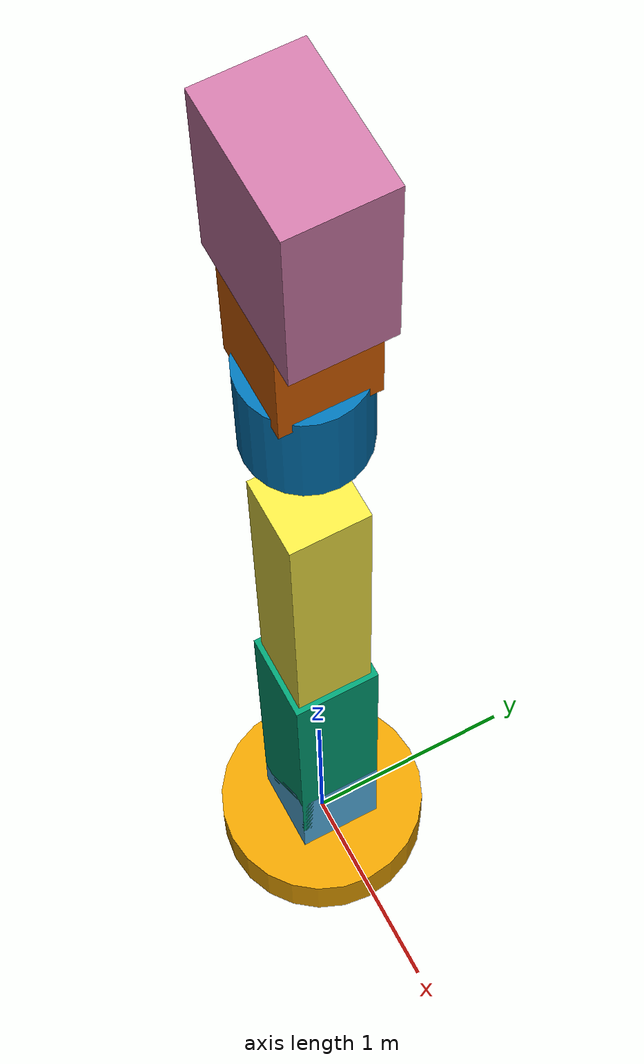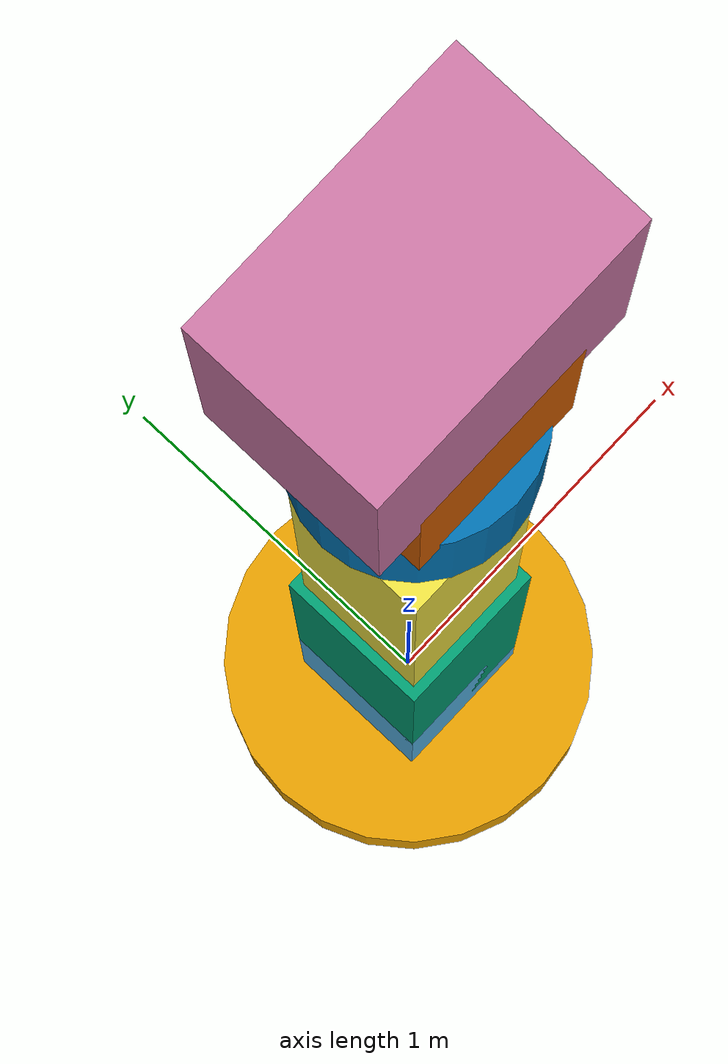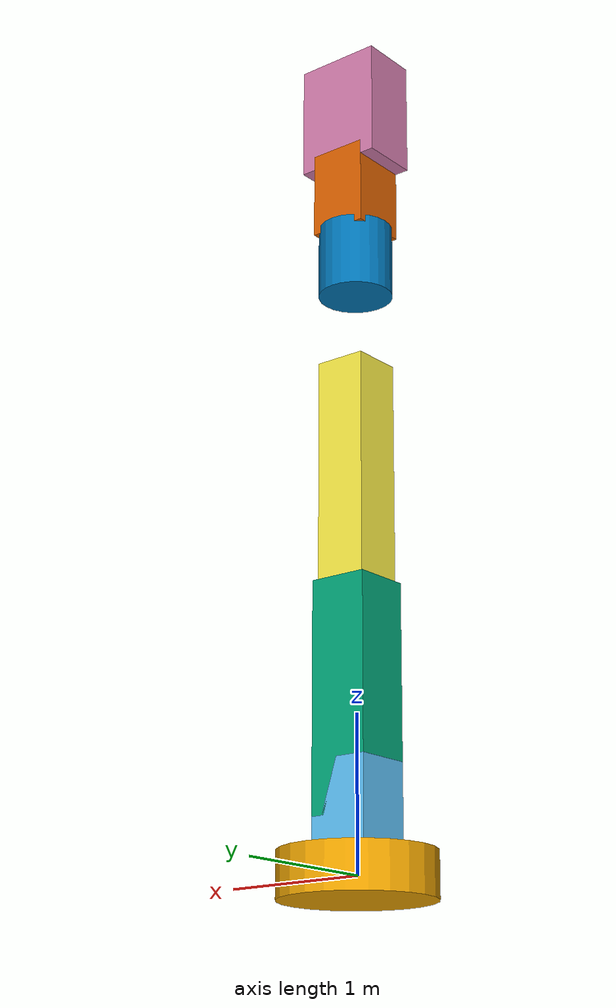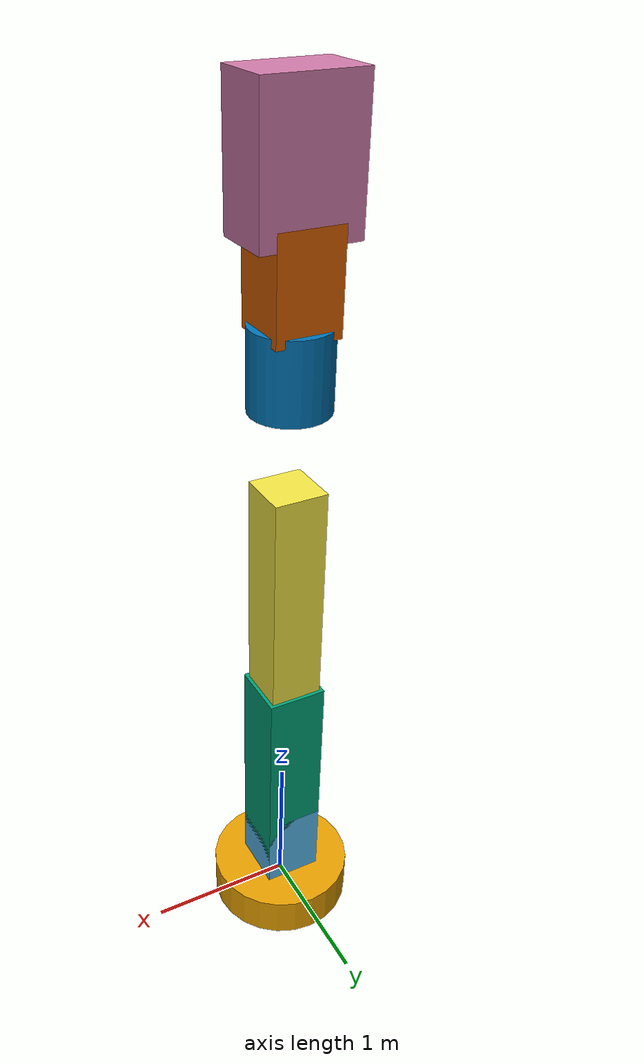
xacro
<?xml version="1.0"?>

<robot xmlns:xacro="http://www.ros.org/wiki/xacro" name="robotic_arm">

    <!-- ==================== BASE ==================== -->

    <link name="base_link">
        <visual>
            <geometry>
                <cylinder radius="0.5" length="0.3"/>
            </geometry>
        </visual>
    </link>

    <!-- ==================== SHOULDER ==================== -->

    <link name="shoulder_link">
        <visual>
            <geometry>
                <box size="0.4 0.4 0.8"/>
            </geometry>
        </visual>
    </link>

    <joint name="base_joint" type="revolute">
        <parent link="base_link"/>
        <child link="shoulder_link"/>

        <origin xyz="0 0 0.3" rpy="0 0 0"/>
        <axis xyz="0 0 1"/>

        <limit
            lower="-2.356"
            upper="2.356"
            effort="10"
            velocity="1.0"/>
    </joint>

    <!-- ==================== UPPER ARM ==================== -->

    <link name="upper_arm_link">
        <visual>
            <geometry>
                <box size="0.4 0.4 1.5"/>
            </geometry>
        </visual>
    </link>

    <joint name="shoulder_joint" type="revolute">
        <parent link="shoulder_link"/>
        <child link="upper_arm_link"/>

        <origin xyz="0 0 0.8" rpy="0 0 0"/>
        <axis xyz="0 1 0"/>

        <limit
            lower="-1.5708"
            upper="1.5708"
            effort="10"
            velocity="1.0"/>
    </joint>

    <!-- ==================== FOREARM ==================== -->

    <link name="forearm_link">
        <visual>
            <geometry>
                <box size="0.35 0.35 1.5"/>
            </geometry>
        </visual>
    </link>

    <joint name="elbow_joint" type="revolute">
        <parent link="upper_arm_link"/>
        <child link="forearm_link"/>

        <origin xyz="0 0 1.5" rpy="0 0 0"/>
        <axis xyz="0 1 0"/>

        <limit
            lower="-1.8326"
            upper="1.8326"
            effort="10"
            velocity="1.0"/>
    </joint>

    <!-- ==================== WRIST ROTATION ==================== -->

    <link name="wrist_rotate_link">
        <visual>
            <geometry>
                <cylinder radius="0.25" length="0.5"/>
            </geometry>
        </visual>
    </link>

    <joint name="wrist_rotate_joint" type="revolute">
        <parent link="forearm_link"/>
        <child link="wrist_rotate_link"/>

        <origin xyz="0 0 1.5" rpy="0 0 0"/>
        <axis xyz="0 0 1"/>

        <limit
            lower="-1.5708"
            upper="1.5708"
            effort="5"
            velocity="1.0"/>
    </joint>

    <!-- ==================== WRIST PITCH ==================== -->

    <link name="wrist_pitch_link">
        <visual>
            <geometry>
                <box size="0.4 0.4 0.6"/>
            </geometry>
        </visual>
    </link>

    <joint name="wrist_pitch_joint" type="revolute">
        <parent link="wrist_rotate_link"/>
        <child link="wrist_pitch_link"/>

        <origin xyz="0 0 0.5" rpy="0 0 0"/>
        <axis xyz="0 1 0"/>

        <limit
            lower="-1.5708"
            upper="1.5708"
            effort="5"
            velocity="1.0"/>
    </joint>

    <!-- ==================== GRIPPER ==================== -->

    <link name="gripper_link">
        <visual>
            <geometry>
                <box size="0.6 0.4 0.8"/>
            </geometry>
        </visual>
    </link>

    <joint name="gripper_mount_joint" type="fixed">
        <parent link="wrist_pitch_link"/>
        <child link="gripper_link"/>

        <origin xyz="0 0 0.6" rpy="0 0 0"/>
    </joint>

</robot>
